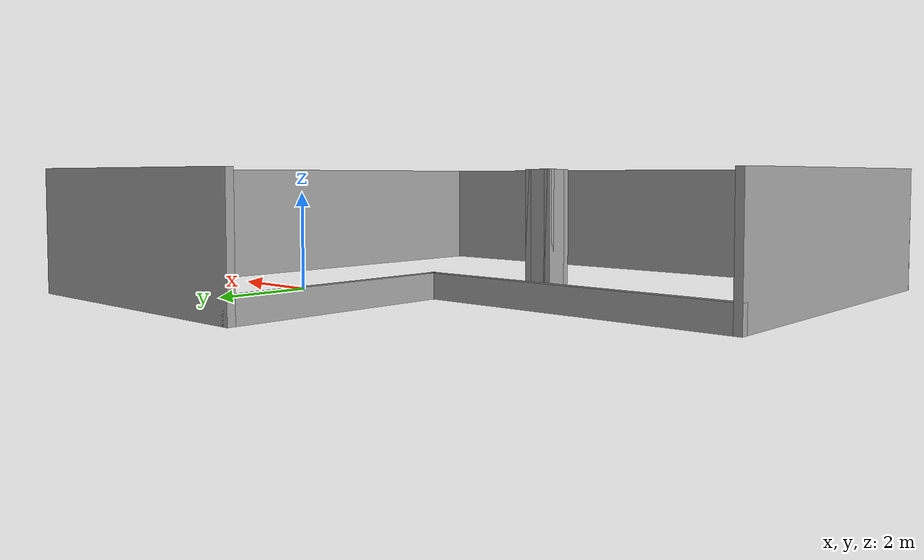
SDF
<?xml version='1.0'?>
<sdf version='1.5'>
  <model name='raven'>
    <pose frame=''>-3.17545 -2.12503 0 0 -0 0</pose>
    <link name='Wall_0'>
      <collision name='Wall_0_Collision'>
        <geometry>
          <box>
            <size>6.36822 0.15 2.5</size>
          </box>
        </geometry>
        <pose frame=''>0 0 1.25 0 -0 0</pose>
      </collision>
      <visual name='Wall_0_Visual'>
        <pose frame=''>0 0 1.25 0 -0 0</pose>
        <geometry>
          <box>
            <size>6.36822 0.15 2.5</size>
          </box>
        </geometry>
        <material>
          <script>
            <uri>file://media/materials/scripts/gazebo.material</uri>
            <name>Gazebo/Grey</name>
          </script>
          <ambient>1 1 1 1</ambient>
        </material>
      </visual>
      <pose frame=''>3.16645 5.92503 0 0 -0 0</pose>
    </link>
    <link name='Wall_11'>
      <collision name='Wall_11_Collision'>
        <geometry>
          <box>
            <size>0.65 0.15 2.5</size>
          </box>
        </geometry>
        <pose frame=''>0 0 1.25 0 -0 0</pose>
      </collision>
      <visual name='Wall_11_Visual'>
        <pose frame=''>0 0 1.25 0 -0 0</pose>
        <geometry>
          <box>
            <size>0.65 0.15 2.5</size>
          </box>
        </geometry>
        <material>
          <script>
            <uri>file://media/materials/scripts/gazebo.material</uri>
            <name>Gazebo/Grey</name>
          </script>
          <ambient>1 1 1 1</ambient>
        </material>
      </visual>
      <pose frame=''>0.075449 -1.82497 0 0 0 -1.5708</pose>
    </link>
    <link name='Wall_12'>
      <collision name='Wall_12_Collision'>
        <geometry>
          <box>
            <size>0.65 0.15 2.5</size>
          </box>
        </geometry>
        <pose frame=''>0 0 1.25 0 -0 0</pose>
      </collision>
      <visual name='Wall_12_Visual'>
        <pose frame=''>0 0 1.25 0 -0 0</pose>
        <geometry>
          <box>
            <size>0.65 0.15 2.5</size>
          </box>
        </geometry>
        <material>
          <script>
            <uri>file://media/materials/scripts/gazebo.material</uri>
            <name>Gazebo/Grey</name>
          </script>
          <ambient>1 1 1 1</ambient>
        </material>
      </visual>
      <pose frame=''>-0.174551 -2.07497 0 0 -0 3.14159</pose>
    </link>
    <link name='Wall_13'>
      <collision name='Wall_13_Collision'>
        <geometry>
          <box>
            <size>0.65 0.15 2.5</size>
          </box>
        </geometry>
        <pose frame=''>0 0 1.25 0 -0 0</pose>
      </collision>
      <visual name='Wall_13_Visual'>
        <pose frame=''>0 0 1.25 0 -0 0</pose>
        <geometry>
          <box>
            <size>0.65 0.15 2.5</size>
          </box>
        </geometry>
        <material>
          <script>
            <uri>file://media/materials/scripts/gazebo.material</uri>
            <name>Gazebo/Grey</name>
          </script>
          <ambient>1 1 1 1</ambient>
        </material>
      </visual>
      <pose frame=''>-0.424551 -1.82497 0 0 -0 1.5708</pose>
    </link>
    <link name='Wall_14'>
      <collision name='Wall_14_Collision'>
        <geometry>
          <box>
            <size>0.65 0.15 2.5</size>
          </box>
        </geometry>
        <pose frame=''>0 0 1.25 0 -0 0</pose>
      </collision>
      <visual name='Wall_14_Visual'>
        <pose frame=''>0 0 1.25 0 -0 0</pose>
        <geometry>
          <box>
            <size>0.65 0.15 2.5</size>
          </box>
        </geometry>
        <material>
          <script>
            <uri>file://media/materials/scripts/gazebo.material</uri>
            <name>Gazebo/Grey</name>
          </script>
          <ambient>1 1 1 1</ambient>
        </material>
      </visual>
      <pose frame=''>-0.174551 -1.57497 0 0 -0 0</pose>
    </link>
    <link name='Wall_2'>
      <collision name='Wall_2_Collision'>
        <geometry>
          <box>
            <size>12 0.15 2.5</size>
          </box>
        </geometry>
        <pose frame=''>0 0 1.25 0 -0 0</pose>
      </collision>
      <visual name='Wall_2_Visual'>
        <pose frame=''>0 0 1.25 0 -0 0</pose>
        <geometry>
          <box>
            <size>12 0.15 2.5</size>
          </box>
        </geometry>
        <material>
          <script>
            <uri>file://media/materials/scripts/gazebo.material</uri>
            <name>Gazebo/Grey</name>
          </script>
          <ambient>1 1 1 1</ambient>
        </material>
      </visual>
      <pose frame=''>6.27545 2.6e-05 0 0 0 -1.5708</pose>
    </link>
    <link name='Wall_4'>
      <collision name='Wall_4_Collision'>
        <geometry>
          <box>
            <size>12.7 0.15 2.5</size>
          </box>
        </geometry>
        <pose frame=''>0 0 1.25 0 -0 0</pose>
      </collision>
      <visual name='Wall_4_Visual'>
        <pose frame=''>0 0 1.25 0 -0 0</pose>
        <geometry>
          <box>
            <size>12.7 0.15 2.5</size>
          </box>
        </geometry>
        <material>
          <script>
            <uri>file://media/materials/scripts/gazebo.material</uri>
            <name>Gazebo/Grey</name>
          </script>
          <ambient>1 1 1 1</ambient>
        </material>
      </visual>
      <pose frame=''>0.000449 -5.92497 0 0 -0 3.14159</pose>
    </link>
    <link name='Wall_6'>
      <collision name='Wall_6_Collision'>
        <geometry>
          <box>
            <size>7.48508 0.15 2.5</size>
          </box>
        </geometry>
        <pose frame=''>0 0 1.25 0 -0 0</pose>
      </collision>
      <visual name='Wall_6_Visual'>
        <pose frame=''>0 0 1.25 0 -0 0</pose>
        <geometry>
          <box>
            <size>7.48508 0.15 2.5</size>
          </box>
        </geometry>
        <material>
          <script>
            <uri>file://media/materials/scripts/gazebo.material</uri>
            <name>Gazebo/Grey</name>
          </script>
          <ambient>1 1 1 1</ambient>
        </material>
      </visual>
      <pose frame=''>-6.27505 -2.25747 0 0 -0 1.57093</pose>
    </link>
    <link name='Wall_7'>
      <collision name='Wall_7_Collision'>
        <geometry>
          <box>
            <size>6.5 0.15 0.5</size>
          </box>
        </geometry>
        <pose frame=''>0 0 0.25 0 -0 0</pose>
      </collision>
      <visual name='Wall_7_Visual'>
        <pose frame=''>0 0 0.25 0 -0 0</pose>
        <geometry>
          <box>
            <size>6.5 0.15 0.5</size>
          </box>
        </geometry>
        <material>
          <script>
            <uri>file://media/materials/scripts/gazebo.material</uri>
            <name>Gazebo/Grey</name>
          </script>
          <ambient>1 1 1 1</ambient>
        </material>
      </visual>
      <pose frame=''>-3.10055 1.41003 0 0 -0 0</pose>
    </link>
    <link name='Wall_9'>
      <collision name='Wall_9_Collision'>
        <geometry>
          <box>
            <size>4.68 0.15 0.5</size>
          </box>
        </geometry>
        <pose frame=''>0 0 0.25 0 -0 0</pose>
      </collision>
      <visual name='Wall_9_Visual'>
        <pose frame=''>0 0 0.25 0 -0 0</pose>
        <geometry>
          <box>
            <size>4.68 0.15 0.5</size>
          </box>
        </geometry>
        <material>
          <script>
            <uri>file://media/materials/scripts/gazebo.material</uri>
            <name>Gazebo/Grey</name>
          </script>
          <ambient>1 1 1 1</ambient>
        </material>
      </visual>
      <pose frame=''>0.057449 3.66003 0 0 0 -1.5708</pose>
    </link>
    <static>1</static>
  </model>
</sdf>
